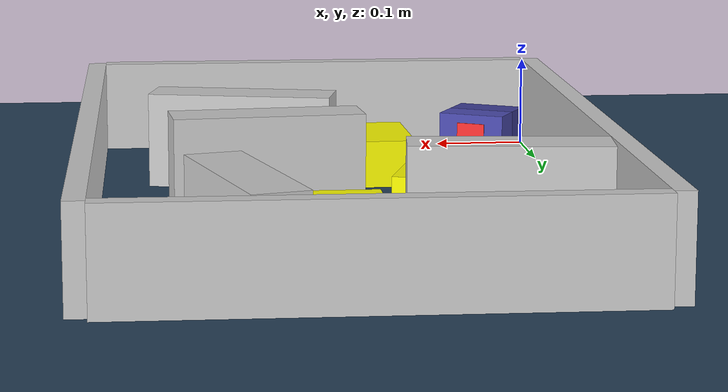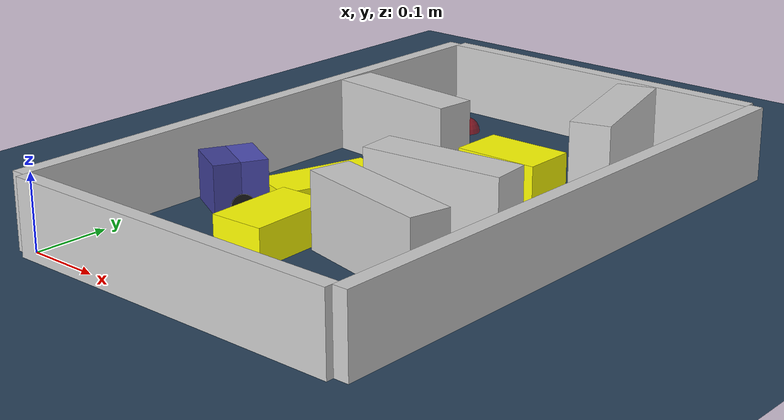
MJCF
<?xml version='1.0' encoding='utf-8'?>
<mujoco model="real_buildable">
  <compiler angle="degree" />
  <option timestep="0.002" integrator="implicitfast" iterations="100" cone="elliptic" />
  <default>
    <geom density="1" />
  </default>
  <asset>
    <texture builtin="gradient" height="3072" rgb1="0.3 0.5 0.7" rgb2="0 0 0" type="skybox" width="512" />
    <texture builtin="checker" height="300" mark="edge" markrgb="0.8 0.8 0.8" name="groundplane" rgb1="0.2 0.3 0.4" rgb2="0.1 0.2 0.3" type="2d" width="300" />
    <material name="groundplane" reflectance="0.2" texrepeat="5 5" texture="groundplane" texuniform="true" />
  </asset>
  <worldbody>
    <light dir="0 0 -1" directional="true" pos="0 0 1.5" />
    <geom name="floor" type="plane" condim="4" friction="0.5 0.005 0.001" material="groundplane" size="0 0 0.05" />
    <body name="walls">
      <geom name="wall_boundary_left" type="box" condim="4" friction="1.0 0.005 0.0001" rgba="0.8 0.8 0.8 1" pos="-0.010000 0.387500 0.050000" euler="0 0 0.000000" size="0.010000 0.397500 0.050000" />
      <geom name="wall_boundary_right" type="box" condim="4" friction="1.0 0.005 0.0001" rgba="0.8 0.8 0.8 1" pos="0.500000 0.387500 0.050000" euler="0 0 0.000000" size="0.010000 0.397500 0.050000" />
      <geom name="wall_boundary_bottom" type="box" condim="4" friction="1.0 0.005 0.0001" rgba="0.8 0.8 0.8 1" pos="0.245000 -0.010000 0.050000" euler="0 0 0.000000" size="0.245000 0.010000 0.050000" />
      <geom name="wall_boundary_top" type="box" condim="4" friction="1.0 0.005 0.0001" rgba="0.8 0.8 0.8 1" pos="0.245000 0.785000 0.050000" euler="0 0 0.000000" size="0.245000 0.010000 0.050000" />
      <geom name="wall_inner_1" type="box" condim="4" friction="1.0 0.005 0.0001" rgba="0.8 0.8 0.8 1" pos="0.339337 0.222667 0.050000" euler="0 0 -12.552249" size="0.097500 0.027500 0.050000" />
      <geom name="wall_inner_2" type="box" condim="4" friction="1.0 0.005 0.0001" rgba="0.8 0.8 0.8 1" pos="0.320465 0.357190 0.050000" euler="0 0 5.473397" size="0.097500 0.027500 0.050000" />
      <geom name="wall_inner_3" type="box" condim="4" friction="1.0 0.005 0.0001" rgba="0.8 0.8 0.8 1" pos="0.100000 0.541000 0.050000" euler="0 0 174.900000" size="0.097500 0.027500 0.050000" />
      <geom name="wall_inner_4" type="box" condim="4" friction="1.0 0.005 0.0001" rgba="0.8 0.8 0.8 1" pos="0.354000 0.671000 0.050000" euler="0 0 105.800000" size="0.097500 0.027500 0.050000" />
    </body>
    <body name="car" pos="0.083076639105914202 0.2391986764521869 0.01" quat="0.85330950387705595 0 0 0.52140472820362171">
      <freejoint name="car_freejoint" />
      <inertial pos="0 0 0.0375" mass="0.35" diaginertia="0.000266 0.000266 0.000286" />
      <geom name="front_chassis_collision" type="box" pos="0.0175 0 0.0375" size="0.0175 0.035 0.0325" rgba="0.3 0.3 0.7 1" />
      <geom name="rear_chassis_collision" type="box" pos="-0.0175 0 0.0375" size="0.0175 0.035 0.0325" rgba="0.25 0.25 0.6 1" />
      <geom name="front_marker" type="box" pos="0.034 0 0.0505" size="0.002 0.015 0.01" rgba="1 0.2 0.2 1" contype="0" conaffinity="0" />
      <body name="rear_support_body" pos="-0.03 0 0.0025">
        <joint name="rear_caster_joint" type="ball" damping="0.0001" />
        <inertial pos="0 0 0" mass="0.025" diaginertia="0.000001 0.000001 0.000001" />
        <geom name="rear_support" type="sphere" pos="0 0 0" size="0.0025" friction="0 0 0" rgba="0.7 0.1 0.1 1" />
      </body>
      <body name="front_support_body" pos="0.03 0 0.0025">
        <joint name="front_caster_joint" type="ball" damping="0.0001" />
        <inertial pos="0 0 0" mass="0.025" diaginertia="0.000001 0.000001 0.000001" />
        <geom name="front_support" type="sphere" pos="0 0 0" size="0.0025" friction="0 0 0" rgba="0.1 0.7 0.1 1" />
      </body>
      <body name="left_wheel" pos="0 0.0375 0.015">
        <inertial pos="0 0 0" mass="0.05" diaginertia="0.000003 0.000006 0.000003" />
        <joint name="left_wheel_joint" type="hinge" axis="0 1 0" damping="0.01" armature="0.0001" />
        <geom name="left_wheel_collision" type="cylinder" size="0.015 0.0005" euler="90 0 0" rgba="0.1 0.1 0.1 1" />
      </body>
      <body name="right_wheel" pos="0 -0.0375 0.015">
        <inertial pos="0 0 0" mass="0.05" diaginertia="0.000003 0.000006 0.000003" />
        <joint name="right_wheel_joint" type="hinge" axis="0 1 0" damping="0.01" armature="0.0001" />
        <geom name="right_wheel_collision" type="cylinder" size="0.015 0.0005" euler="90 0 0" rgba="0.1 0.1 0.1 1" />
      </body>
    </body>
    <body name="obstacle_0_movable">
      <geom name="obstacle_0_movable" condim="4" pos="0.14175496434070933 0.33832811478386587 0.02" friction="1 0.005 0.0001" rgba="1 1 0 1" size="0.035000 0.075000 0.020000" type="box" mass="0.1" quat="0.14681717882287279 0 0 0.98916364470318696" />
      <joint type="free" />
    </body>
    <body name="obstacle_1_movable">
      <geom name="obstacle_1_movable" condim="4" pos="0.27899999999999997 0.55000000000000082 0.025000000000000001" friction="1 0.005 0.0001" rgba="1 1 0 1" size="0.037500 0.060000 0.025000" type="box" mass="0.1" quat="0.71079947387299236 0 0 -0.70339470281050398" />
      <joint type="free" />
    </body>
    <body name="obstacle_2_movable">
      <geom name="obstacle_2_movable" condim="4" pos="0.19534999999999988 0.19503399999999999 0.025000000000000001" friction="1 0.005 0.0001" rgba="1 1 0 1" size="0.037500 0.060000 0.025000" type="box" mass="0.1" quat="0.99983912126992203 0 0 0.017936877604261551" />
      <joint type="free" />
    </body>
    <site name="goal" type="sphere" pos="0.080000 0.700000 0.0" size="0.02" rgba="1 0 0 0.5" />
  </worldbody>
  <actuator>
    <velocity name="left_wheel_drive" joint="left_wheel_joint" ctrlrange="-25 25" kv="0.75" forcerange="-0.5 0.5" />
    <velocity name="right_wheel_drive" joint="right_wheel_joint" ctrlrange="-25 25" kv="0.75" forcerange="-0.5 0.5" />
  </actuator>
</mujoco>
